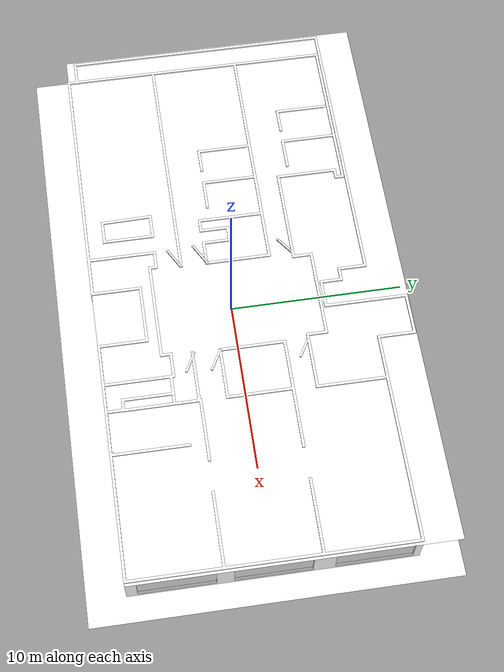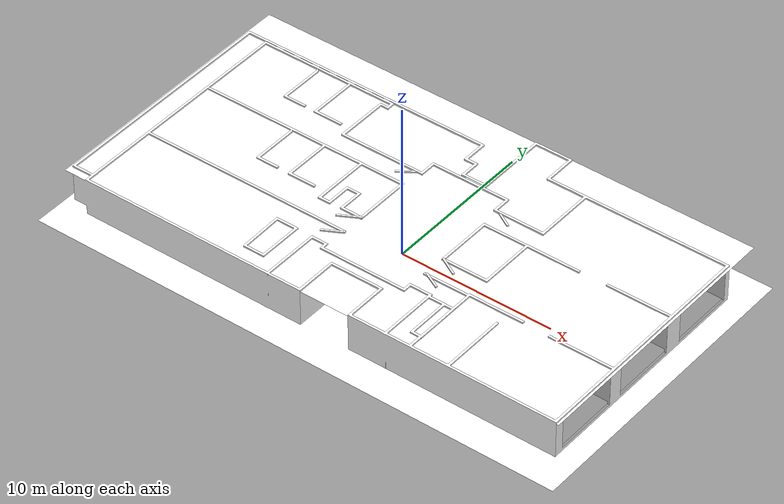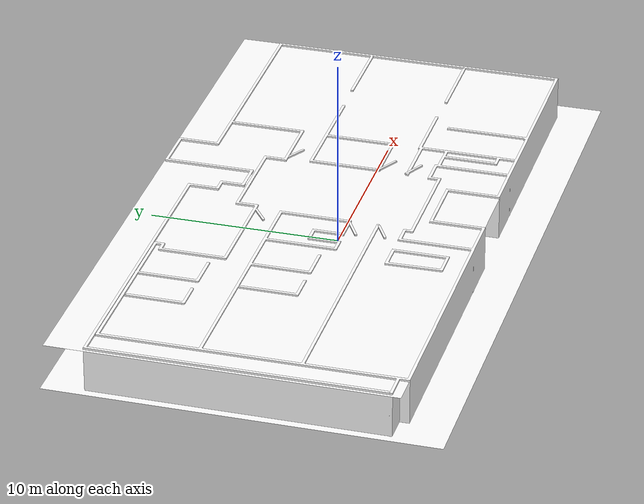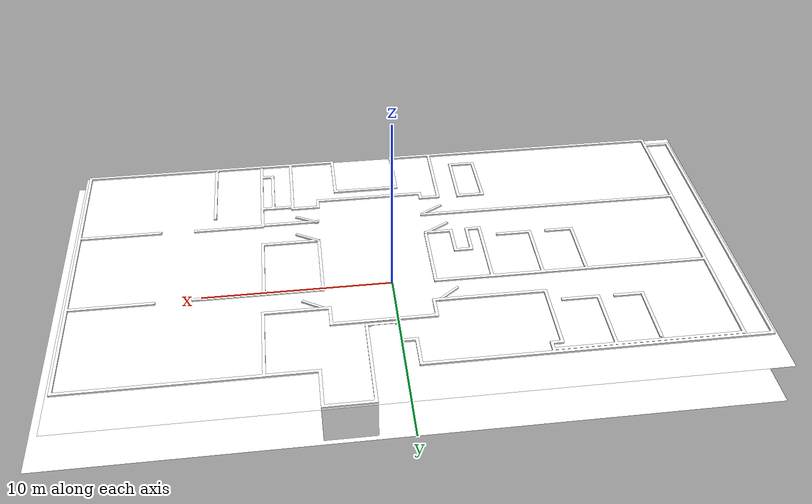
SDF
<?xml version='1.0' encoding='ASCII'?>
<sdf version='1.7'>
  <world name='gazebo_world'>
    <physics name='1ms' type='ignored'>
      <max_step_size>0.01</max_step_size>
      <real_time_factor>1</real_time_factor>
    </physics>
    <plugin name='ignition::gazebo::systems::Physics' filename='libignition-gazebo-physics-system.so'/>
    <plugin name='ignition::gazebo::systems::UserCommands' filename='libignition-gazebo-user-commands-system.so'/>
    <plugin name='ignition::gazebo::systems::SceneBroadcaster' filename='libignition-gazebo-scene-broadcaster-system.so'/>
    <plugin name='ignition::gazebo::systems::Imu' filename='ignition-gazebo-imu-system'/>
    <plugin name='ignition::gazebo::systems::Sensors' filename='ignition-gazebo-sensors-system'>
      <render_engine>ogre2</render_engine>
    </plugin>
    <scene>
      <ambient>0.4 0.4 0.4 1</ambient>
      <background>0.7 0.7 0.7 1</background>
      <shadows>1</shadows>
      <grid>0</grid>
    </scene>
    <light name='sun' type='directional'>
      <cast_shadows>1</cast_shadows>
      <pose>0 0 10 0 -0 0</pose>
      <diffuse>0.8 0.8 0.8 1</diffuse>
      <specular>0.2 0.2 0.2 1</specular>
      <attenuation>
        <range>1000</range>
        <constant>0.9</constant>
        <linear>0.01</linear>
        <quadratic>0.001</quadratic>
      </attenuation>
      <direction>-0.5 0.1 -0.9</direction>
      <spot>
        <inner_angle>0</inner_angle>
        <outer_angle>0</outer_angle>
        <falloff>0</falloff>
      </spot>
    </light>
    <model name='ground_plane'>
      <static>1</static>
      <link name='link'>
        <collision name='collision'>
          <geometry>
            <plane>
              <normal>0 0 1</normal>
              <size>100 100</size>
            </plane>
          </geometry>
          <surface>
            <contact>
              <collide_bitmask>65535</collide_bitmask>
              <ode/>
            </contact>
            <friction>
              <ode>
                <mu>100</mu>
                <mu2>50</mu2>
              </ode>
              <torsional>
                <ode/>
              </torsional>
            </friction>
            <bounce/>
          </surface>
          <max_contacts>10</max_contacts>
        </collision>
        <self_collide>0</self_collide>
        <enable_wind>0</enable_wind>
        <kinematic>0</kinematic>
      </link>
    </model>
    <include>
      <uri>
        model://office
      </uri>
    </include>
    <light name='pointlight' type='point'>
      <visualize>false</visualize>
      <pose>0.298336 0.092374 2 0 -0 0</pose>
      <cast_shadows>true</cast_shadows>
      <intensity>3</intensity>
      <direction>0 0 -1</direction>
      <diffuse>0.5 0.5 0.5 1</diffuse>
      <specular>0.5 0.5 0.5 1</specular>
      <attenuation>
        <range>30</range>
        <linear>0.5</linear>
        <constant>0.20000000000000001</constant>
        <quadratic>0.01</quadratic>
      </attenuation>
      <spot>
        <inner_angle>0</inner_angle>
        <outer_angle>0</outer_angle>
        <falloff>0</falloff>
      </spot>
    </light>
    <light name='pointlight_0' type='point'>
      <visualize>false</visualize>
      <pose>-12.6066 0.10986 2 0 -0 0</pose>
      <cast_shadows>true</cast_shadows>
      <intensity>3</intensity>
      <direction>0 0 -1</direction>
      <diffuse>0.5 0.5 0.5 1</diffuse>
      <specular>0.5 0.5 0.5 1</specular>
      <attenuation>
        <range>30</range>
        <linear>0.5</linear>
        <constant>0.20000000000000001</constant>
        <quadratic>0</quadratic>
      </attenuation>
      <spot>
        <inner_angle>0</inner_angle>
        <outer_angle>0</outer_angle>
        <falloff>0</falloff>
      </spot>
    </light>
    <light name='pointlight_1' type='point'>
      <visualize>false</visualize>
      <pose>-10.3089 -5.80035 2 0 -0 0</pose>
      <cast_shadows>true</cast_shadows>
      <intensity>3</intensity>
      <direction>0 0 -1</direction>
      <diffuse>0.5 0.5 0.5 1</diffuse>
      <specular>0.5 0.5 0.5 1</specular>
      <attenuation>
        <range>20</range>
        <linear>0.5</linear>
        <constant>0.20000000000000001</constant>
        <quadratic>0.01</quadratic>
      </attenuation>
      <spot>
        <inner_angle>0</inner_angle>
        <outer_angle>0</outer_angle>
        <falloff>0</falloff>
      </spot>
    </light>
    <light name='pointlight_2' type='point'>
      <visualize>false</visualize>
      <pose>11.3497 0.168535 2 0 -0 0</pose>
      <cast_shadows>true</cast_shadows>
      <intensity>3</intensity>
      <direction>0 0 -1</direction>
      <diffuse>0.5 0.5 0.5 1</diffuse>
      <specular>0.5 0.5 0.5 1</specular>
      <attenuation>
        <range>30</range>
        <linear>0.5</linear>
        <constant>0.20000000000000001</constant>
        <quadratic>0</quadratic>
      </attenuation>
      <spot>
        <inner_angle>0</inner_angle>
        <outer_angle>0</outer_angle>
        <falloff>0</falloff>
      </spot>
    </light>
    <light name='pointlight_3' type='point'>
      <visualize>false</visualize>
      <pose>-14.4146 5.39959 2 0 -0 0</pose>
      <cast_shadows>true</cast_shadows>
      <intensity>3</intensity>
      <direction>0 0 -1</direction>
      <diffuse>0.5 0.5 0.5 1</diffuse>
      <specular>0.5 0.5 0.5 1</specular>
      <attenuation>
        <range>10</range>
        <linear>0.5</linear>
        <constant>0.20000000000000001</constant>
        <quadratic>0.01</quadratic>
      </attenuation>
      <spot>
        <inner_angle>0</inner_angle>
        <outer_angle>0</outer_angle>
        <falloff>0</falloff>
      </spot>
    </light>
    <light name='pointlight_4' type='point'>
      <visualize>false</visualize>
      <pose>-11.1593 6.6516 2 0 -0 0</pose>
      <cast_shadows>true</cast_shadows>
      <intensity>3</intensity>
      <direction>0 0 -1</direction>
      <diffuse>0.5 0.5 0.5 1</diffuse>
      <specular>0.5 0.5 0.5 1</specular>
      <attenuation>
        <range>10</range>
        <linear>0.5</linear>
        <constant>0.20000000000000001</constant>
        <quadratic>0.01</quadratic>
      </attenuation>
      <spot>
        <inner_angle>0</inner_angle>
        <outer_angle>0</outer_angle>
        <falloff>0</falloff>
      </spot>
    </light>
    <light name='pointlight_5' type='point'>
      <visualize>false</visualize>
      <pose>-8.04798 5.92033 2 0 -0 0</pose>
      <cast_shadows>true</cast_shadows>
      <intensity>3</intensity>
      <direction>0 0 -1</direction>
      <diffuse>0.5 0.5 0.5 1</diffuse>
      <specular>0.5 0.5 0.5 1</specular>
      <attenuation>
        <range>10</range>
        <linear>0.5</linear>
        <constant>0.20000000000000001</constant>
        <quadratic>0.01</quadratic>
      </attenuation>
      <spot>
        <inner_angle>0</inner_angle>
        <outer_angle>0</outer_angle>
        <falloff>0</falloff>
      </spot>
    </light>
    <light name='pointlight_6' type='point'>
      <visualize>false</visualize>
      <pose>-8.84665 0.89593 2 0 -0 0</pose>
      <cast_shadows>true</cast_shadows>
      <intensity>3</intensity>
      <direction>0 0 -1</direction>
      <diffuse>0.5 0.5 0.5 1</diffuse>
      <specular>0.5 0.5 0.5 1</specular>
      <attenuation>
        <range>10</range>
        <linear>0.5</linear>
        <constant>0.20000000000000001</constant>
        <quadratic>0.01</quadratic>
      </attenuation>
      <spot>
        <inner_angle>0</inner_angle>
        <outer_angle>0</outer_angle>
        <falloff>0</falloff>
      </spot>
    </light>
    <light name='pointlight_7' type='point'>
      <visualize>false</visualize>
      <pose>-5.81174 0.712998 2 0 -0 0</pose>
      <cast_shadows>true</cast_shadows>
      <intensity>3</intensity>
      <direction>0 0 -1</direction>
      <diffuse>0.5 0.5 0.5 1</diffuse>
      <specular>0.5 0.5 0.5 1</specular>
      <attenuation>
        <range>10</range>
        <linear>0.5</linear>
        <constant>0.20000000000000001</constant>
        <quadratic>0.01</quadratic>
      </attenuation>
      <spot>
        <inner_angle>0</inner_angle>
        <outer_angle>0</outer_angle>
        <falloff>0</falloff>
      </spot>
    </light>
    <light name='pointlight_8' type='point'>
      <visualize>false</visualize>
      <pose>-4.82634 -1.80711 2 0 -0 0</pose>
      <cast_shadows>false</cast_shadows>
      <intensity>3</intensity>
      <direction>0 0 -1</direction>
      <diffuse>0.5 0.5 0.5 1</diffuse>
      <specular>0.5 0.5 0.5 1</specular>
      <attenuation>
        <range>10</range>
        <linear>0.5</linear>
        <constant>0.20000000000000001</constant>
        <quadratic>0.01</quadratic>
      </attenuation>
      <spot>
        <inner_angle>0</inner_angle>
        <outer_angle>0</outer_angle>
        <falloff>0</falloff>
      </spot>
    </light>
    <light name='pointlight_9' type='point'>
      <visualize>false</visualize>
      <pose>-4.93364 -3.28308 2 0 -0 0</pose>
      <cast_shadows>false</cast_shadows>
      <intensity>1</intensity>
      <direction>0 0 -1</direction>
      <diffuse>0.5 0.5 0.5 1</diffuse>
      <specular>0.5 0.5 0.5 1</specular>
      <attenuation>
        <range>4</range>
        <linear>0.5</linear>
        <constant>0.20000000000000001</constant>
        <quadratic>0.01</quadratic>
      </attenuation>
      <spot>
        <inner_angle>0</inner_angle>
        <outer_angle>0</outer_angle>
        <falloff>0</falloff>
      </spot>
    </light>
    <light name='pointlight_10' type='point'>
      <visualize>false</visualize>
      <pose>-4.85154 3.08325 2 0 -0 0</pose>
      <cast_shadows>false</cast_shadows>
      <intensity>1</intensity>
      <direction>0 0 -1</direction>
      <diffuse>0.5 0.5 0.5 1</diffuse>
      <specular>0.5 0.5 0.5 1</specular>
      <attenuation>
        <range>4</range>
        <linear>0.5</linear>
        <constant>0.20000000000000001</constant>
        <quadratic>0.01</quadratic>
      </attenuation>
      <spot>
        <inner_angle>0</inner_angle>
        <outer_angle>0</outer_angle>
        <falloff>0</falloff>
      </spot>
    </light>
    <light name='pointlight_11' type='point'>
      <visualize>false</visualize>
      <pose>12.1819 -5.52248 2 0 -0 0</pose>
      <cast_shadows>true</cast_shadows>
      <intensity>3</intensity>
      <direction>0 0 -1</direction>
      <diffuse>0.5 0.5 0.5 1</diffuse>
      <specular>0.5 0.5 0.5 1</specular>
      <attenuation>
        <range>10</range>
        <linear>0.5</linear>
        <constant>0.20000000000000001</constant>
        <quadratic>0.01</quadratic>
      </attenuation>
      <spot>
        <inner_angle>0</inner_angle>
        <outer_angle>0</outer_angle>
        <falloff>0</falloff>
      </spot>
    </light>
    <light name='pointlight_12' type='point'>
      <visualize>false</visualize>
      <pose>7.78005 -5.25633 2 0 -0 0</pose>
      <cast_shadows>true</cast_shadows>
      <intensity>1</intensity>
      <direction>0 0 -1</direction>
      <diffuse>0.5 0.5 0.5 1</diffuse>
      <specular>0.5 0.5 0.5 1</specular>
      <attenuation>
        <range>15</range>
        <linear>0.5</linear>
        <constant>0.20000000000000001</constant>
        <quadratic>0.01</quadratic>
      </attenuation>
      <spot>
        <inner_angle>0</inner_angle>
        <outer_angle>0</outer_angle>
        <falloff>0</falloff>
      </spot>
    </light>
    <light name='pointlight_13' type='point'>
      <visualize>false</visualize>
      <pose>11.1536 5.4954 2 0 -0 0</pose>
      <cast_shadows>true</cast_shadows>
      <intensity>3</intensity>
      <direction>0 0 -1</direction>
      <diffuse>0.5 0.5 0.5 1</diffuse>
      <specular>0.5 0.5 0.5 1</specular>
      <attenuation>
        <range>10</range>
        <linear>0.5</linear>
        <constant>0.20000000000000001</constant>
        <quadratic>0.01</quadratic>
      </attenuation>
      <spot>
        <inner_angle>0</inner_angle>
        <outer_angle>0</outer_angle>
        <falloff>0</falloff>
      </spot>
    </light>
    <light name='pointlight_14' type='point'>
      <visualize>false</visualize>
      <pose>-13.8302 -6.40984 2 0 -0 0</pose>
      <cast_shadows>true</cast_shadows>
      <intensity>2</intensity>
      <direction>0 0 0</direction>
      <diffuse>0.5 0.5 0.5 1</diffuse>
      <specular>0.5 0.5 0.5 1</specular>
      <attenuation>
        <range>10</range>
        <linear>0.5</linear>
        <constant>0.20000000000000001</constant>
        <quadratic>0.01</quadratic>
      </attenuation>
      <spot>
        <inner_angle>0</inner_angle>
        <outer_angle>0</outer_angle>
        <falloff>0</falloff>
      </spot>
    </light>
    <light name='pointlight_15' type='point'>
      <visualize>false</visualize>
      <pose>-6.52255 -6.97923 2 0 -0 0</pose>
      <cast_shadows>true</cast_shadows>
      <intensity>2</intensity>
      <direction>0 0 0</direction>
      <diffuse>0.5 0.5 0.5 1</diffuse>
      <specular>0.5 0.5 0.5 1</specular>
      <attenuation>
        <range>10</range>
        <linear>0.5</linear>
        <constant>0.20000000000000001</constant>
        <quadratic>0.01</quadratic>
      </attenuation>
      <spot>
        <inner_angle>0</inner_angle>
        <outer_angle>0</outer_angle>
        <falloff>0</falloff>
      </spot>
    </light>
    <light name='pointlight_16' type='point'>
      <visualize>false</visualize>
      <pose>-3.5551 -4.37198 2 0 -0 0</pose>
      <cast_shadows>true</cast_shadows>
      <intensity>1</intensity>
      <direction>0 0 0</direction>
      <diffuse>0.5 0.5 0.5 1</diffuse>
      <specular>0.5 0.5 0.5 1</specular>
      <attenuation>
        <range>10</range>
        <linear>0.5</linear>
        <constant>0.20000000000000001</constant>
        <quadratic>0.01</quadratic>
      </attenuation>
      <spot>
        <inner_angle>0</inner_angle>
        <outer_angle>0</outer_angle>
        <falloff>0</falloff>
      </spot>
    </light>
    <light name='pointlight_17' type='point'>
      <visualize>false</visualize>
      <pose>-3.55307 -8.09973 2 0 -0 0</pose>
      <cast_shadows>true</cast_shadows>
      <intensity>1</intensity>
      <direction>0 0 0</direction>
      <diffuse>0.5 0.5 0.5 1</diffuse>
      <specular>0.5 0.5 0.5 1</specular>
      <attenuation>
        <range>10</range>
        <linear>0.5</linear>
        <constant>0.20000000000000001</constant>
        <quadratic>0.01</quadratic>
      </attenuation>
      <spot>
        <inner_angle>0</inner_angle>
        <outer_angle>0</outer_angle>
        <falloff>0</falloff>
      </spot>
    </light>
    <light name='pointlight_18' type='point'>
      <visualize>false</visualize>
      <pose>-13.7368 -2.52088 2 0 -0 0</pose>
      <cast_shadows>false</cast_shadows>
      <intensity>2</intensity>
      <direction>0 0 0</direction>
      <diffuse>0.5 0.5 0.5 1</diffuse>
      <specular>0.5 0.5 0.5 1</specular>
      <attenuation>
        <range>10</range>
        <linear>0.5</linear>
        <constant>0.20000000000000001</constant>
        <quadratic>0</quadratic>
      </attenuation>
      <spot>
        <inner_angle>0</inner_angle>
        <outer_angle>0</outer_angle>
        <falloff>0</falloff>
      </spot>
    </light>
    <light name='pointlight_19' type='point'>
      <visualize>false</visualize>
      <pose>-10.7579 5.24553 2 0 -0 0</pose>
      <cast_shadows>true</cast_shadows>
      <intensity>3</intensity>
      <direction>0 0 0</direction>
      <diffuse>0.5 0.5 0.5 1</diffuse>
      <specular>0.5 0.5 0.5 1</specular>
      <attenuation>
        <range>10</range>
        <linear>0.5</linear>
        <constant>0.20000000000000001</constant>
        <quadratic>0.01</quadratic>
      </attenuation>
      <spot>
        <inner_angle>0</inner_angle>
        <outer_angle>0</outer_angle>
        <falloff>0</falloff>
      </spot>
    </light>
    <light name='pointlight_20' type='point'>
      <visualize>false</visualize>
      <pose>-11.1375 2.33478 2 0 -0 0</pose>
      <cast_shadows>true</cast_shadows>
      <intensity>2</intensity>
      <direction>0 0 0</direction>
      <diffuse>0.5 0.5 0.5 1</diffuse>
      <specular>0.5 0.5 0.5 1</specular>
      <attenuation>
        <range>10</range>
        <linear>0.5</linear>
        <constant>0.20000000000000001</constant>
        <quadratic>0.01</quadratic>
      </attenuation>
      <spot>
        <inner_angle>0</inner_angle>
        <outer_angle>0</outer_angle>
        <falloff>0</falloff>
      </spot>
    </light>
    <light name='pointlight_21' type='point'>
      <visualize>false</visualize>
      <pose>-4.08766 1.81411 2 0 -0 0</pose>
      <cast_shadows>true</cast_shadows>
      <intensity>2</intensity>
      <direction>0 0 0</direction>
      <diffuse>0.5 0.5 0.5 1</diffuse>
      <specular>0.5 0.5 0.5 1</specular>
      <attenuation>
        <range>10</range>
        <linear>0.5</linear>
        <constant>0.20000000000000001</constant>
        <quadratic>0.01</quadratic>
      </attenuation>
      <spot>
        <inner_angle>0</inner_angle>
        <outer_angle>0</outer_angle>
        <falloff>0</falloff>
      </spot>
    </light>
    <light name='pointlight_22' type='point'>
      <visualize>false</visualize>
      <pose>0.85482 -3.62215 2 0 -0 0</pose>
      <cast_shadows>true</cast_shadows>
      <intensity>2</intensity>
      <direction>0 0 0</direction>
      <diffuse>0.5 0.5 0.5 1</diffuse>
      <specular>0.5 0.5 0.5 1</specular>
      <attenuation>
        <range>10</range>
        <linear>0.5</linear>
        <constant>0.20000000000000001</constant>
        <quadratic>0</quadratic>
      </attenuation>
      <spot>
        <inner_angle>0</inner_angle>
        <outer_angle>0</outer_angle>
        <falloff>0</falloff>
      </spot>
    </light>
    <light name='pointlight_23' type='point'>
      <visualize>false</visualize>
      <pose>5.53131 -4.38355 2 0 -0 0</pose>
      <cast_shadows>true</cast_shadows>
      <intensity>1</intensity>
      <direction>0 0 0</direction>
      <diffuse>0.5 0.5 0.5 1</diffuse>
      <specular>0.5 0.5 0.5 1</specular>
      <attenuation>
        <range>10</range>
        <linear>0.5</linear>
        <constant>0.20000000000000001</constant>
        <quadratic>0.01</quadratic>
      </attenuation>
      <spot>
        <inner_angle>0</inner_angle>
        <outer_angle>0</outer_angle>
        <falloff>0</falloff>
      </spot>
    </light>
    <light name='pointlight_24' type='point'>
      <visualize>false</visualize>
      <pose>5.79973 -2.89065 2 0 -0 0</pose>
      <cast_shadows>true</cast_shadows>
      <intensity>1</intensity>
      <direction>0 0 0</direction>
      <diffuse>0.5 0.5 0.5 1</diffuse>
      <specular>0.5 0.5 0.5 1</specular>
      <attenuation>
        <range>10</range>
        <linear>0.5</linear>
        <constant>0.20000000000000001</constant>
        <quadratic>0.01</quadratic>
      </attenuation>
      <spot>
        <inner_angle>0</inner_angle>
        <outer_angle>0</outer_angle>
        <falloff>0</falloff>
      </spot>
    </light>
    <light name='pointlight_25' type='point'>
      <visualize>false</visualize>
      <pose>7.63509 -7.95752 2 0 -0 0</pose>
      <cast_shadows>true</cast_shadows>
      <intensity>1</intensity>
      <direction>0 0 0</direction>
      <diffuse>0.5 0.5 0.5 1</diffuse>
      <specular>0.5 0.5 0.5 1</specular>
      <attenuation>
        <range>10</range>
        <linear>0.5</linear>
        <constant>0.20000000000000001</constant>
        <quadratic>0.01</quadratic>
      </attenuation>
      <spot>
        <inner_angle>0</inner_angle>
        <outer_angle>0</outer_angle>
        <falloff>0</falloff>
      </spot>
    </light>
    <light name='pointlight_26' type='point'>
      <visualize>false</visualize>
      <pose>14.917 -7.77253 2 0 -0 0</pose>
      <cast_shadows>true</cast_shadows>
      <intensity>2</intensity>
      <direction>0 0 0</direction>
      <diffuse>0.5 0.5 0.5 1</diffuse>
      <specular>0.5 0.5 0.5 1</specular>
      <attenuation>
        <range>10</range>
        <linear>0.5</linear>
        <constant>0.20000000000000001</constant>
        <quadratic>0.01</quadratic>
      </attenuation>
      <spot>
        <inner_angle>0</inner_angle>
        <outer_angle>0</outer_angle>
        <falloff>0</falloff>
      </spot>
    </light>
    <light name='pointlight_27' type='point'>
      <visualize>false</visualize>
      <pose>14.1861 -2.17648 2 0 -0 0</pose>
      <cast_shadows>true</cast_shadows>
      <intensity>2</intensity>
      <direction>0 0 0</direction>
      <diffuse>0.5 0.5 0.5 1</diffuse>
      <specular>0.5 0.5 0.5 1</specular>
      <attenuation>
        <range>15</range>
        <linear>0.5</linear>
        <constant>0.20000000000000001</constant>
        <quadratic>0.01</quadratic>
      </attenuation>
      <spot>
        <inner_angle>0</inner_angle>
        <outer_angle>0</outer_angle>
        <falloff>0</falloff>
      </spot>
    </light>
    <light name='pointlight_28' type='point'>
      <visualize>false</visualize>
      <pose>14.6044 4.02476 2 0 -0 0</pose>
      <cast_shadows>true</cast_shadows>
      <intensity>2</intensity>
      <direction>0 0 0</direction>
      <diffuse>0.5 0.5 0.5 1</diffuse>
      <specular>0.5 0.5 0.5 1</specular>
      <attenuation>
        <range>20</range>
        <linear>0.5</linear>
        <constant>0.20000000000000001</constant>
        <quadratic>0.01</quadratic>
      </attenuation>
      <spot>
        <inner_angle>0</inner_angle>
        <outer_angle>0</outer_angle>
        <falloff>0</falloff>
      </spot>
    </light>
    <light name='pointlight_29' type='point'>
      <visualize>false</visualize>
      <pose>6.19174 2.20681 2 0 -0 0</pose>
      <cast_shadows>true</cast_shadows>
      <intensity>1</intensity>
      <direction>0 0 0</direction>
      <diffuse>0.5 0.5 0.5 1</diffuse>
      <specular>0.5 0.5 0.5 1</specular>
      <attenuation>
        <range>10</range>
        <linear>0.5</linear>
        <constant>0.20000000000000001</constant>
        <quadratic>0.01</quadratic>
      </attenuation>
      <spot>
        <inner_angle>0</inner_angle>
        <outer_angle>0</outer_angle>
        <falloff>0</falloff>
      </spot>
    </light>
  </world>
</sdf>

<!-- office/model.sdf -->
<sdf version="1.6">
  <model name='office'>
    <static>1</static>
    <link name='walls'>
      <collision name='collision'>
        <geometry>
          <mesh>
            <scale>1 1 1</scale>
            <uri>meshes/walls.dae</uri>
          </mesh>
        </geometry>
        <surface>
          <friction>
            <ode/>
          </friction>
          <bounce/>
          <contact/>
        </surface>
      </collision>
      <visual name='visual'>
        <geometry>
          <mesh>
            <scale>1 1 1</scale>
            <uri>meshes/walls.dae</uri>
          </mesh>
        </geometry>
        <material>
          <diffuse>1 1 1 1</diffuse>
          <specular>0 0 0 0</specular>
          <pbr>
            <metal>
              <albedo_map>materials/textures/walls/macro_flour_diff_4k.jpg</albedo_map>
              <normal_map>materials/textures/walls/macro_flour_nor_gl_4k.exr</normal_map>
              <roughness_map>materials/textures/walls/macro_flour_rough_4k.exr</roughness_map>
              <metalness>0.</metalness>
            </metal>
          </pbr>
        </material>
      </visual>
    </link>
    <link name='wood_floor'>
      <visual name='visual'>
        <geometry>
          <mesh>
            <scale>1 1 1</scale>
            <uri>meshes/wood.dae</uri>
          </mesh>
        </geometry>
        <material>
          <diffuse>1 1 1 1</diffuse>
          <specular>1 1 1 1</specular>
          <pbr>
            <metal>
              <albedo_map>materials/textures/wood/wood_floor_diff_4k.jpg</albedo_map>
              <normal_map>materials/textures/wood/wood_floor_nor_gl_4k.exr</normal_map>
              <roughness_map>materials/textures/wood/wood_floor_rough_4k.exr</roughness_map>
              <metalness>0.</metalness>
            </metal>
          </pbr>
        </material>
      </visual>
    </link>
    <link name='doors'>
      <visual name='visual'>
        <geometry>
          <mesh>
            <scale>1 1 1</scale>
            <uri>meshes/doors.dae</uri>
          </mesh>
        </geometry>
        <material>
          <render_order>1</render_order>
          <diffuse>1 1 1 1</diffuse>
          <specular>1 1 1 1</specular>
          <pbr>
            <metal>
              <albedo_map>materials/textures/wood/wood_floor_diff_4k.jpg</albedo_map>
              <normal_map>materials/textures/wood/wood_floor_nor_gl_4k.exr</normal_map>
              <roughness_map>materials/textures/wood/wood_floor_rough_4k.exr</roughness_map>
              <metalness>0.</metalness>
            </metal>
          </pbr>
        </material>
      </visual>
    </link>
    <link name='windows1'>
      <visual name='visual'>
        <geometry>
          <mesh>
            <scale>1 1 1</scale>
            <uri>meshes/windows.dae</uri>
          </mesh>
        </geometry>
        <!-- Idea of transparency taken from https://github.com/gazebosim/gz-rendering/issues/846#issuecomment-1549579115 -->
        <material>
          <ambient>0.3  0.3  0.3  0.7</ambient>
          <diffuse>0.7  0.7  0.7  0.7</diffuse>
          <specular>1 1 1 0.7</specular>
        </material>
      </visual>
    </link>
    <link name='logo'>
      <visual name='visual'>
        <geometry>
          <mesh>
            <scale>1 1 1</scale>
            <uri>meshes/logo.dae</uri>
          </mesh>
        </geometry>
        <material>
          <diffuse>1 1 1 1</diffuse>
          <specular>1 1 1 1</specular>
          <pbr>
            <metal>
              <albedo_map>materials/textures/walls/logo.jpeg</albedo_map>
              <metalness>0.</metalness>
            </metal>
          </pbr>
        </material>
      </visual>
    </link>
    <link name='frame'>
      <visual name='visual'>
        <geometry>
          <mesh>
            <scale>1 1 1</scale>
            <uri>meshes/frame.dae</uri>
          </mesh>
        </geometry>
        <material>
          <render_order>1</render_order>
          <diffuse>1 1 1 1</diffuse>
          <specular>1 1 1 1</specular>
          <pbr>
            <metal>
              <albedo_map>materials/textures/wood/wood_floor_diff_4k.jpg</albedo_map>
              <normal_map>materials/textures/wood/wood_floor_nor_gl_4k.exr</normal_map>
              <roughness_map>materials/textures/wood/wood_floor_rough_4k.exr</roughness_map>
              <metalness>0.</metalness>
            </metal>
          </pbr>
        </material>
      </visual>
    </link>
    <link name='tiles'>
      <visual name='visual'>
        <geometry>
          <mesh>
            <scale>1 1 1</scale>
            <uri>meshes/tiles.dae</uri>
          </mesh>
        </geometry>
        <material>
          <diffuse>1 1 1 1</diffuse>
          <specular>1 1 1 1</specular>
          <pbr>
            <metal>
              <albedo_map>materials/textures/tiles/Tiles054_1K-JPG_Color.jpg</albedo_map>
              <normal_map>materials/textures/tiles/Tiles054_1K-JPG_NormalDX.jpg</normal_map>
              <roughness_map>materials/textures/tiles/Tiles054_1K-JPG_Roughness.jpg</roughness_map>
              <metalness>0.</metalness>
            </metal>
          </pbr>
        </material>
      </visual>
    </link>
    <link name='roof'>
      <visual name='visual'>
        <geometry>
          <mesh>
            <scale>1 1 1</scale>
            <uri>meshes/roof.dae</uri>
          </mesh>
        </geometry>
        <material>
          <diffuse>1 1 1 1</diffuse>
          <specular>0 0 0 0</specular>
          <pbr>
            <metal>
              <albedo_map>materials/textures/roof/TCom_Scifi_Panel_512_albedo.png</albedo_map>
              <normal_map>materials/textures/roof/TCom_Scifi_Panel_512_normal.png</normal_map>
              <roughness_map>materials/textures/roof/TCom_Scifi_Panel_512_roughness.png</roughness_map>
              <metalness>0.</metalness>
            </metal>
          </pbr>
        </material>
      </visual>
    </link>
    <pose>0 0 0 0 0 0</pose>
  </model>
</sdf>
